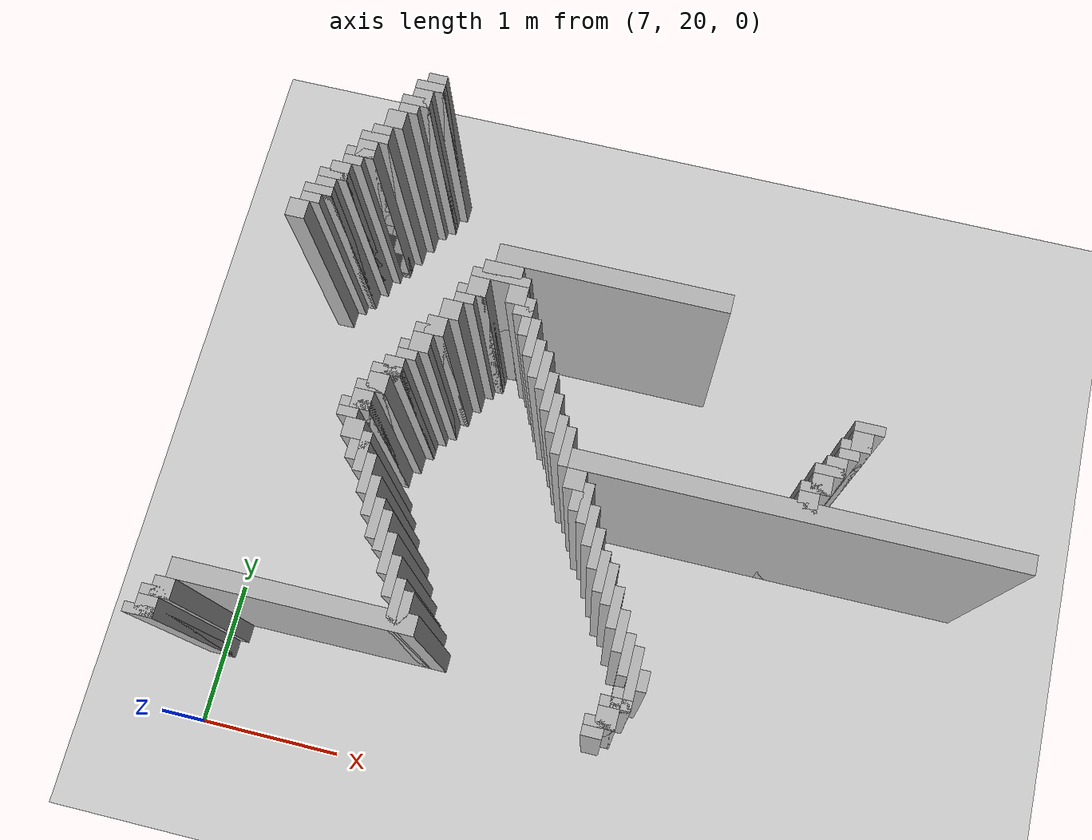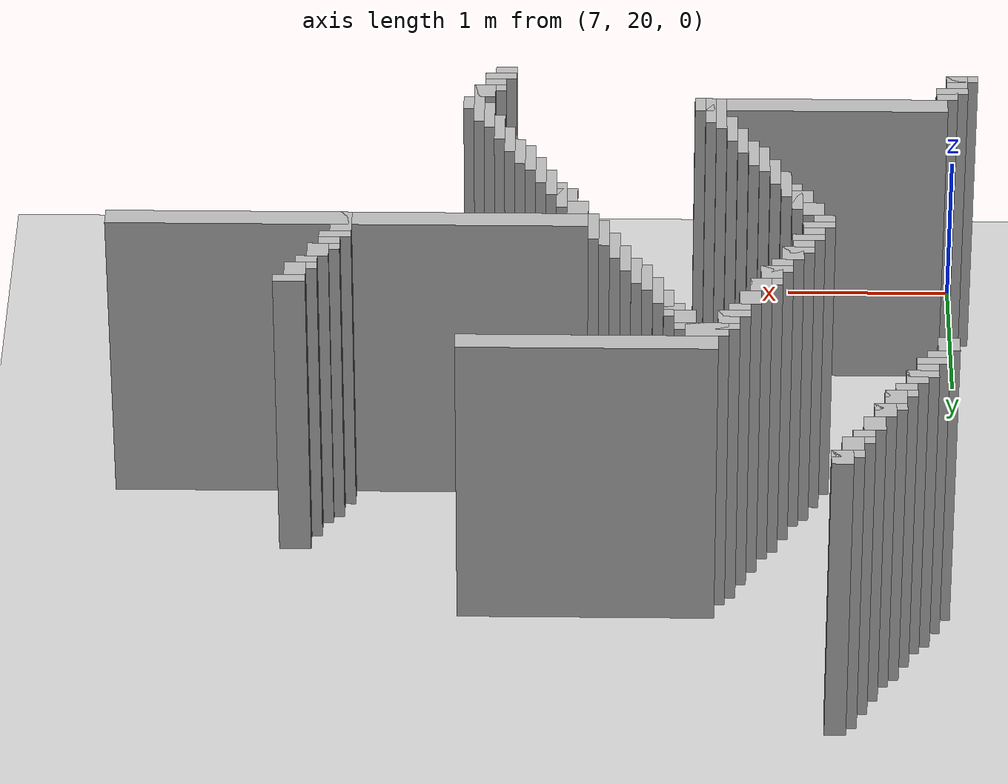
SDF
<sdf version="1.6">
 <world name="slam_world">
  <model name="ground_plane">
   <static>true</static>
   <link name="link">
    <collision name="collision">
     <geometry><plane><normal>0 0 1</normal><size>100 100</size></plane></geometry>
    </collision>
    <visual name="visual">
     <geometry><plane><normal>0 0 1</normal><size>100 100</size></plane></geometry>
     <material>
      <ambient>0.8 0.8 0.8 1</ambient>
      <diffuse>0.8 0.8 0.8 1</diffuse>
      <specular>0.8 0.8 0.8 1</specular>
     </material>
    </visual>
   </link>
  </model>
  <model name="wall_6">
   <static>true</static>
   <pose>7.787234042553191 24.319148936170212 1.0 0 0 0</pose>
   <link name="link">
    <collision name="collision">
     <geometry><box><size>0.1276595744680851 0.1276595744680851 2.0</size></box></geometry>
    </collision>
    <visual name="visual">
     <geometry><box><size>0.1276595744680851 0.1276595744680851 2.0</size></box></geometry>
     <material><ambient>0.5 0.5 0.5 1</ambient><diffuse>0.7 0.7 0.7 1</diffuse></material>
    </visual>
   </link>
  </model>
  <model name="wall_12">
   <static>true</static>
   <pose>7.755319148936169 24.28723404255319 1.0 0 0 0</pose>
   <link name="link">
    <collision name="collision">
     <geometry><box><size>0.19148936170212766 0.06382978723404255 2.0</size></box></geometry>
    </collision>
    <visual name="visual">
     <geometry><box><size>0.19148936170212766 0.06382978723404255 2.0</size></box></geometry>
     <material><ambient>0.5 0.5 0.5 1</ambient><diffuse>0.7 0.7 0.7 1</diffuse></material>
    </visual>
   </link>
  </model>
  <model name="wall_18">
   <static>true</static>
   <pose>7.723404255319148 24.191489361702125 1.0 0 0 0</pose>
   <link name="link">
    <collision name="collision">
     <geometry><box><size>0.1276595744680851 0.1276595744680851 2.0</size></box></geometry>
    </collision>
    <visual name="visual">
     <geometry><box><size>0.1276595744680851 0.1276595744680851 2.0</size></box></geometry>
     <material><ambient>0.5 0.5 0.5 1</ambient><diffuse>0.7 0.7 0.7 1</diffuse></material>
    </visual>
   </link>
  </model>
  <model name="wall_24">
   <static>true</static>
   <pose>7.691489361702127 24.159574468085104 1.0 0 0 0</pose>
   <link name="link">
    <collision name="collision">
     <geometry><box><size>0.19148936170212766 0.06382978723404255 2.0</size></box></geometry>
    </collision>
    <visual name="visual">
     <geometry><box><size>0.19148936170212766 0.06382978723404255 2.0</size></box></geometry>
     <material><ambient>0.5 0.5 0.5 1</ambient><diffuse>0.7 0.7 0.7 1</diffuse></material>
    </visual>
   </link>
  </model>
  <model name="wall_30">
   <static>true</static>
   <pose>7.659574468085106 24.095744680851062 1.0 0 0 0</pose>
   <link name="link">
    <collision name="collision">
     <geometry><box><size>0.1276595744680851 0.06382978723404255 2.0</size></box></geometry>
    </collision>
    <visual name="visual">
     <geometry><box><size>0.1276595744680851 0.06382978723404255 2.0</size></box></geometry>
     <material><ambient>0.5 0.5 0.5 1</ambient><diffuse>0.7 0.7 0.7 1</diffuse></material>
    </visual>
   </link>
  </model>
  <model name="wall_36">
   <static>true</static>
   <pose>7.595744680851063 23.999999999999996 1.0 0 0 0</pose>
   <link name="link">
    <collision name="collision">
     <geometry><box><size>0.1276595744680851 0.1276595744680851 2.0</size></box></geometry>
    </collision>
    <visual name="visual">
     <geometry><box><size>0.1276595744680851 0.1276595744680851 2.0</size></box></geometry>
     <material><ambient>0.5 0.5 0.5 1</ambient><diffuse>0.7 0.7 0.7 1</diffuse></material>
    </visual>
   </link>
  </model>
  <model name="wall_42">
   <static>true</static>
   <pose>7.531914893617021 23.872340425531913 1.0 0 0 0</pose>
   <link name="link">
    <collision name="collision">
     <geometry><box><size>0.1276595744680851 0.1276595744680851 2.0</size></box></geometry>
    </collision>
    <visual name="visual">
     <geometry><box><size>0.1276595744680851 0.1276595744680851 2.0</size></box></geometry>
     <material><ambient>0.5 0.5 0.5 1</ambient><diffuse>0.7 0.7 0.7 1</diffuse></material>
    </visual>
   </link>
  </model>
  <model name="wall_48">
   <static>true</static>
   <pose>7.499999999999999 23.840425531914892 1.0 0 0 0</pose>
   <link name="link">
    <collision name="collision">
     <geometry><box><size>0.19148936170212766 0.06382978723404255 2.0</size></box></geometry>
    </collision>
    <visual name="visual">
     <geometry><box><size>0.19148936170212766 0.06382978723404255 2.0</size></box></geometry>
     <material><ambient>0.5 0.5 0.5 1</ambient><diffuse>0.7 0.7 0.7 1</diffuse></material>
    </visual>
   </link>
  </model>
  <model name="wall_54">
   <static>true</static>
   <pose>7.468085106382978 23.744680851063826 1.0 0 0 0</pose>
   <link name="link">
    <collision name="collision">
     <geometry><box><size>0.1276595744680851 0.1276595744680851 2.0</size></box></geometry>
    </collision>
    <visual name="visual">
     <geometry><box><size>0.1276595744680851 0.1276595744680851 2.0</size></box></geometry>
     <material><ambient>0.5 0.5 0.5 1</ambient><diffuse>0.7 0.7 0.7 1</diffuse></material>
    </visual>
   </link>
  </model>
  <model name="wall_60">
   <static>true</static>
   <pose>7.436170212765957 23.712765957446805 1.0 0 0 0</pose>
   <link name="link">
    <collision name="collision">
     <geometry><box><size>0.19148936170212766 0.06382978723404255 2.0</size></box></geometry>
    </collision>
    <visual name="visual">
     <geometry><box><size>0.19148936170212766 0.06382978723404255 2.0</size></box></geometry>
     <material><ambient>0.5 0.5 0.5 1</ambient><diffuse>0.7 0.7 0.7 1</diffuse></material>
    </visual>
   </link>
  </model>
  <model name="wall_66">
   <static>true</static>
   <pose>7.404255319148936 23.648936170212764 1.0 0 0 0</pose>
   <link name="link">
    <collision name="collision">
     <geometry><box><size>0.1276595744680851 0.06382978723404255 2.0</size></box></geometry>
    </collision>
    <visual name="visual">
     <geometry><box><size>0.1276595744680851 0.06382978723404255 2.0</size></box></geometry>
     <material><ambient>0.5 0.5 0.5 1</ambient><diffuse>0.7 0.7 0.7 1</diffuse></material>
    </visual>
   </link>
  </model>
  <model name="wall_72">
   <static>true</static>
   <pose>7.340425531914893 23.5531914893617 1.0 0 0 0</pose>
   <link name="link">
    <collision name="collision">
     <geometry><box><size>0.1276595744680851 0.1276595744680851 2.0</size></box></geometry>
    </collision>
    <visual name="visual">
     <geometry><box><size>0.1276595744680851 0.1276595744680851 2.0</size></box></geometry>
     <material><ambient>0.5 0.5 0.5 1</ambient><diffuse>0.7 0.7 0.7 1</diffuse></material>
    </visual>
   </link>
  </model>
  <model name="wall_78">
   <static>true</static>
   <pose>7.3085106382978715 23.52127659574468 1.0 0 0 0</pose>
   <link name="link">
    <collision name="collision">
     <geometry><box><size>0.19148936170212766 0.06382978723404255 2.0</size></box></geometry>
    </collision>
    <visual name="visual">
     <geometry><box><size>0.19148936170212766 0.06382978723404255 2.0</size></box></geometry>
     <material><ambient>0.5 0.5 0.5 1</ambient><diffuse>0.7 0.7 0.7 1</diffuse></material>
    </visual>
   </link>
  </model>
  <model name="wall_84">
   <static>true</static>
   <pose>7.276595744680851 23.425531914893615 1.0 0 0 0</pose>
   <link name="link">
    <collision name="collision">
     <geometry><box><size>0.1276595744680851 0.1276595744680851 2.0</size></box></geometry>
    </collision>
    <visual name="visual">
     <geometry><box><size>0.1276595744680851 0.1276595744680851 2.0</size></box></geometry>
     <material><ambient>0.5 0.5 0.5 1</ambient><diffuse>0.7 0.7 0.7 1</diffuse></material>
    </visual>
   </link>
  </model>
  <model name="wall_90">
   <static>true</static>
   <pose>7.244680851063829 23.393617021276594 1.0 0 0 0</pose>
   <link name="link">
    <collision name="collision">
     <geometry><box><size>0.19148936170212766 0.06382978723404255 2.0</size></box></geometry>
    </collision>
    <visual name="visual">
     <geometry><box><size>0.19148936170212766 0.06382978723404255 2.0</size></box></geometry>
     <material><ambient>0.5 0.5 0.5 1</ambient><diffuse>0.7 0.7 0.7 1</diffuse></material>
    </visual>
   </link>
  </model>
  <model name="wall_96">
   <static>true</static>
   <pose>7.212765957446808 23.329787234042552 1.0 0 0 0</pose>
   <link name="link">
    <collision name="collision">
     <geometry><box><size>0.1276595744680851 0.06382978723404255 2.0</size></box></geometry>
    </collision>
    <visual name="visual">
     <geometry><box><size>0.1276595744680851 0.06382978723404255 2.0</size></box></geometry>
     <material><ambient>0.5 0.5 0.5 1</ambient><diffuse>0.7 0.7 0.7 1</diffuse></material>
    </visual>
   </link>
  </model>
  <model name="wall_102">
   <static>true</static>
   <pose>7.148936170212766 23.234042553191486 1.0 0 0 0</pose>
   <link name="link">
    <collision name="collision">
     <geometry><box><size>0.1276595744680851 0.1276595744680851 2.0</size></box></geometry>
    </collision>
    <visual name="visual">
     <geometry><box><size>0.1276595744680851 0.1276595744680851 2.0</size></box></geometry>
     <material><ambient>0.5 0.5 0.5 1</ambient><diffuse>0.7 0.7 0.7 1</diffuse></material>
    </visual>
   </link>
  </model>
  <model name="wall_103">
   <static>true</static>
   <pose>9.25531914893617 23.234042553191486 1.0 0 0 0</pose>
   <link name="link">
    <collision name="collision">
     <geometry><box><size>1.5319148936170213 0.1276595744680851 2.0</size></box></geometry>
    </collision>
    <visual name="visual">
     <geometry><box><size>1.5319148936170213 0.1276595744680851 2.0</size></box></geometry>
     <material><ambient>0.5 0.5 0.5 1</ambient><diffuse>0.7 0.7 0.7 1</diffuse></material>
    </visual>
   </link>
  </model>
  <model name="wall_110">
   <static>true</static>
   <pose>8.553191489361701 23.106382978723403 1.0 0 0 0</pose>
   <link name="link">
    <collision name="collision">
     <geometry><box><size>0.2553191489361702 0.1276595744680851 2.0</size></box></geometry>
    </collision>
    <visual name="visual">
     <geometry><box><size>0.2553191489361702 0.1276595744680851 2.0</size></box></geometry>
     <material><ambient>0.5 0.5 0.5 1</ambient><diffuse>0.7 0.7 0.7 1</diffuse></material>
    </visual>
   </link>
  </model>
  <model name="wall_117">
   <static>true</static>
   <pose>8.553191489361701 23.074468085106382 1.0 0 0 0</pose>
   <link name="link">
    <collision name="collision">
     <geometry><box><size>0.3829787234042553 0.06382978723404255 2.0</size></box></geometry>
    </collision>
    <visual name="visual">
     <geometry><box><size>0.3829787234042553 0.06382978723404255 2.0</size></box></geometry>
     <material><ambient>0.5 0.5 0.5 1</ambient><diffuse>0.7 0.7 0.7 1</diffuse></material>
    </visual>
   </link>
  </model>
  <model name="wall_124">
   <static>true</static>
   <pose>8.425531914893616 22.978723404255316 1.0 0 0 0</pose>
   <link name="link">
    <collision name="collision">
     <geometry><box><size>0.1276595744680851 0.1276595744680851 2.0</size></box></geometry>
    </collision>
    <visual name="visual">
     <geometry><box><size>0.1276595744680851 0.1276595744680851 2.0</size></box></geometry>
     <material><ambient>0.5 0.5 0.5 1</ambient><diffuse>0.7 0.7 0.7 1</diffuse></material>
    </visual>
   </link>
  </model>
  <model name="wall_125">
   <static>true</static>
   <pose>8.680851063829786 22.978723404255316 1.0 0 0 0</pose>
   <link name="link">
    <collision name="collision">
     <geometry><box><size>0.1276595744680851 0.1276595744680851 2.0</size></box></geometry>
    </collision>
    <visual name="visual">
     <geometry><box><size>0.1276595744680851 0.1276595744680851 2.0</size></box></geometry>
     <material><ambient>0.5 0.5 0.5 1</ambient><diffuse>0.7 0.7 0.7 1</diffuse></material>
    </visual>
   </link>
  </model>
  <model name="wall_132">
   <static>true</static>
   <pose>8.393617021276595 22.946808510638295 1.0 0 0 0</pose>
   <link name="link">
    <collision name="collision">
     <geometry><box><size>0.19148936170212766 0.06382978723404255 2.0</size></box></geometry>
    </collision>
    <visual name="visual">
     <geometry><box><size>0.19148936170212766 0.06382978723404255 2.0</size></box></geometry>
     <material><ambient>0.5 0.5 0.5 1</ambient><diffuse>0.7 0.7 0.7 1</diffuse></material>
    </visual>
   </link>
  </model>
  <model name="wall_133">
   <static>true</static>
   <pose>8.77659574468085 22.851063829787233 1.0 0 0 0</pose>
   <link name="link">
    <collision name="collision">
     <geometry><box><size>0.06382978723404255 0.2553191489361702 2.0</size></box></geometry>
    </collision>
    <visual name="visual">
     <geometry><box><size>0.06382978723404255 0.2553191489361702 2.0</size></box></geometry>
     <material><ambient>0.5 0.5 0.5 1</ambient><diffuse>0.7 0.7 0.7 1</diffuse></material>
    </visual>
   </link>
  </model>
  <model name="wall_137">
   <static>true</static>
   <pose>8.361702127659575 22.882978723404253 1.0 0 0 0</pose>
   <link name="link">
    <collision name="collision">
     <geometry><box><size>0.1276595744680851 0.06382978723404255 2.0</size></box></geometry>
    </collision>
    <visual name="visual">
     <geometry><box><size>0.1276595744680851 0.06382978723404255 2.0</size></box></geometry>
     <material><ambient>0.5 0.5 0.5 1</ambient><diffuse>0.7 0.7 0.7 1</diffuse></material>
    </visual>
   </link>
  </model>
  <model name="wall_138">
   <static>true</static>
   <pose>8.74468085106383 22.882978723404253 1.0 0 0 0</pose>
   <link name="link">
    <collision name="collision">
     <geometry><box><size>0.1276595744680851 0.06382978723404255 2.0</size></box></geometry>
    </collision>
    <visual name="visual">
     <geometry><box><size>0.1276595744680851 0.06382978723404255 2.0</size></box></geometry>
     <material><ambient>0.5 0.5 0.5 1</ambient><diffuse>0.7 0.7 0.7 1</diffuse></material>
    </visual>
   </link>
  </model>
  <model name="wall_143">
   <static>true</static>
   <pose>8.297872340425531 22.78723404255319 1.0 0 0 0</pose>
   <link name="link">
    <collision name="collision">
     <geometry><box><size>0.1276595744680851 0.1276595744680851 2.0</size></box></geometry>
    </collision>
    <visual name="visual">
     <geometry><box><size>0.1276595744680851 0.1276595744680851 2.0</size></box></geometry>
     <material><ambient>0.5 0.5 0.5 1</ambient><diffuse>0.7 0.7 0.7 1</diffuse></material>
    </visual>
   </link>
  </model>
  <model name="wall_144">
   <static>true</static>
   <pose>8.840425531914892 22.723404255319146 1.0 0 0 0</pose>
   <link name="link">
    <collision name="collision">
     <geometry><box><size>0.06382978723404255 0.2553191489361702 2.0</size></box></geometry>
    </collision>
    <visual name="visual">
     <geometry><box><size>0.06382978723404255 0.2553191489361702 2.0</size></box></geometry>
     <material><ambient>0.5 0.5 0.5 1</ambient><diffuse>0.7 0.7 0.7 1</diffuse></material>
    </visual>
   </link>
  </model>
  <model name="wall_151">
   <static>true</static>
   <pose>8.23404255319149 22.659574468085104 1.0 0 0 0</pose>
   <link name="link">
    <collision name="collision">
     <geometry><box><size>0.1276595744680851 0.1276595744680851 2.0</size></box></geometry>
    </collision>
    <visual name="visual">
     <geometry><box><size>0.1276595744680851 0.1276595744680851 2.0</size></box></geometry>
     <material><ambient>0.5 0.5 0.5 1</ambient><diffuse>0.7 0.7 0.7 1</diffuse></material>
    </visual>
   </link>
  </model>
  <model name="wall_152">
   <static>true</static>
   <pose>8.904255319148936 22.595744680851062 1.0 0 0 0</pose>
   <link name="link">
    <collision name="collision">
     <geometry><box><size>0.06382978723404255 0.2553191489361702 2.0</size></box></geometry>
    </collision>
    <visual name="visual">
     <geometry><box><size>0.06382978723404255 0.2553191489361702 2.0</size></box></geometry>
     <material><ambient>0.5 0.5 0.5 1</ambient><diffuse>0.7 0.7 0.7 1</diffuse></material>
    </visual>
   </link>
  </model>
  <model name="wall_159">
   <static>true</static>
   <pose>8.202127659574467 22.627659574468083 1.0 0 0 0</pose>
   <link name="link">
    <collision name="collision">
     <geometry><box><size>0.19148936170212766 0.06382978723404255 2.0</size></box></geometry>
    </collision>
    <visual name="visual">
     <geometry><box><size>0.19148936170212766 0.06382978723404255 2.0</size></box></geometry>
     <material><ambient>0.5 0.5 0.5 1</ambient><diffuse>0.7 0.7 0.7 1</diffuse></material>
    </visual>
   </link>
  </model>
  <model name="wall_160">
   <static>true</static>
   <pose>8.968085106382977 22.53191489361702 1.0 0 0 0</pose>
   <link name="link">
    <collision name="collision">
     <geometry><box><size>0.06382978723404255 0.2553191489361702 2.0</size></box></geometry>
    </collision>
    <visual name="visual">
     <geometry><box><size>0.06382978723404255 0.2553191489361702 2.0</size></box></geometry>
     <material><ambient>0.5 0.5 0.5 1</ambient><diffuse>0.7 0.7 0.7 1</diffuse></material>
    </visual>
   </link>
  </model>
  <model name="wall_161">
   <static>true</static>
   <pose>11.01063829787234 22.627659574468083 1.0 0 0 0</pose>
   <link name="link">
    <collision name="collision">
     <geometry><box><size>0.19148936170212766 0.06382978723404255 2.0</size></box></geometry>
    </collision>
    <visual name="visual">
     <geometry><box><size>0.19148936170212766 0.06382978723404255 2.0</size></box></geometry>
     <material><ambient>0.5 0.5 0.5 1</ambient><diffuse>0.7 0.7 0.7 1</diffuse></material>
    </visual>
   </link>
  </model>
  <model name="wall_164">
   <static>true</static>
   <pose>8.170212765957446 22.53191489361702 1.0 0 0 0</pose>
   <link name="link">
    <collision name="collision">
     <geometry><box><size>0.1276595744680851 0.1276595744680851 2.0</size></box></geometry>
    </collision>
    <visual name="visual">
     <geometry><box><size>0.1276595744680851 0.1276595744680851 2.0</size></box></geometry>
     <material><ambient>0.5 0.5 0.5 1</ambient><diffuse>0.7 0.7 0.7 1</diffuse></material>
    </visual>
   </link>
  </model>
  <model name="wall_165">
   <static>true</static>
   <pose>10.978723404255318 22.53191489361702 1.0 0 0 0</pose>
   <link name="link">
    <collision name="collision">
     <geometry><box><size>0.1276595744680851 0.1276595744680851 2.0</size></box></geometry>
    </collision>
    <visual name="visual">
     <geometry><box><size>0.1276595744680851 0.1276595744680851 2.0</size></box></geometry>
     <material><ambient>0.5 0.5 0.5 1</ambient><diffuse>0.7 0.7 0.7 1</diffuse></material>
    </visual>
   </link>
  </model>
  <model name="wall_169">
   <static>true</static>
   <pose>8.138297872340425 22.5 1.0 0 0 0</pose>
   <link name="link">
    <collision name="collision">
     <geometry><box><size>0.19148936170212766 0.06382978723404255 2.0</size></box></geometry>
    </collision>
    <visual name="visual">
     <geometry><box><size>0.19148936170212766 0.06382978723404255 2.0</size></box></geometry>
     <material><ambient>0.5 0.5 0.5 1</ambient><diffuse>0.7 0.7 0.7 1</diffuse></material>
    </visual>
   </link>
  </model>
  <model name="wall_170">
   <static>true</static>
   <pose>9.03191489361702 22.404255319148934 1.0 0 0 0</pose>
   <link name="link">
    <collision name="collision">
     <geometry><box><size>0.06382978723404255 0.2553191489361702 2.0</size></box></geometry>
    </collision>
    <visual name="visual">
     <geometry><box><size>0.06382978723404255 0.2553191489361702 2.0</size></box></geometry>
     <material><ambient>0.5 0.5 0.5 1</ambient><diffuse>0.7 0.7 0.7 1</diffuse></material>
    </visual>
   </link>
  </model>
  <model name="wall_171">
   <static>true</static>
   <pose>10.946808510638297 22.5 1.0 0 0 0</pose>
   <link name="link">
    <collision name="collision">
     <geometry><box><size>0.19148936170212766 0.06382978723404255 2.0</size></box></geometry>
    </collision>
    <visual name="visual">
     <geometry><box><size>0.19148936170212766 0.06382978723404255 2.0</size></box></geometry>
     <material><ambient>0.5 0.5 0.5 1</ambient><diffuse>0.7 0.7 0.7 1</diffuse></material>
    </visual>
   </link>
  </model>
  <model name="wall_174">
   <static>true</static>
   <pose>8.106382978723403 22.436170212765955 1.0 0 0 0</pose>
   <link name="link">
    <collision name="collision">
     <geometry><box><size>0.1276595744680851 0.06382978723404255 2.0</size></box></geometry>
    </collision>
    <visual name="visual">
     <geometry><box><size>0.1276595744680851 0.06382978723404255 2.0</size></box></geometry>
     <material><ambient>0.5 0.5 0.5 1</ambient><diffuse>0.7 0.7 0.7 1</diffuse></material>
    </visual>
   </link>
  </model>
  <model name="wall_175">
   <static>true</static>
   <pose>10.914893617021276 22.436170212765955 1.0 0 0 0</pose>
   <link name="link">
    <collision name="collision">
     <geometry><box><size>0.1276595744680851 0.06382978723404255 2.0</size></box></geometry>
    </collision>
    <visual name="visual">
     <geometry><box><size>0.1276595744680851 0.06382978723404255 2.0</size></box></geometry>
     <material><ambient>0.5 0.5 0.5 1</ambient><diffuse>0.7 0.7 0.7 1</diffuse></material>
    </visual>
   </link>
  </model>
  <model name="wall_179">
   <static>true</static>
   <pose>8.042553191489361 22.340425531914892 1.0 0 0 0</pose>
   <link name="link">
    <collision name="collision">
     <geometry><box><size>0.1276595744680851 0.1276595744680851 2.0</size></box></geometry>
    </collision>
    <visual name="visual">
     <geometry><box><size>0.1276595744680851 0.1276595744680851 2.0</size></box></geometry>
     <material><ambient>0.5 0.5 0.5 1</ambient><diffuse>0.7 0.7 0.7 1</diffuse></material>
    </visual>
   </link>
  </model>
  <model name="wall_180">
   <static>true</static>
   <pose>9.095744680851062 22.27659574468085 1.0 0 0 0</pose>
   <link name="link">
    <collision name="collision">
     <geometry><box><size>0.06382978723404255 0.2553191489361702 2.0</size></box></geometry>
    </collision>
    <visual name="visual">
     <geometry><box><size>0.06382978723404255 0.2553191489361702 2.0</size></box></geometry>
     <material><ambient>0.5 0.5 0.5 1</ambient><diffuse>0.7 0.7 0.7 1</diffuse></material>
    </visual>
   </link>
  </model>
  <model name="wall_181">
   <static>true</static>
   <pose>10.851063829787233 22.340425531914892 1.0 0 0 0</pose>
   <link name="link">
    <collision name="collision">
     <geometry><box><size>0.1276595744680851 0.1276595744680851 2.0</size></box></geometry>
    </collision>
    <visual name="visual">
     <geometry><box><size>0.1276595744680851 0.1276595744680851 2.0</size></box></geometry>
     <material><ambient>0.5 0.5 0.5 1</ambient><diffuse>0.7 0.7 0.7 1</diffuse></material>
    </visual>
   </link>
  </model>
  <model name="wall_184">
   <static>true</static>
   <pose>8.01063829787234 22.30851063829787 1.0 0 0 0</pose>
   <link name="link">
    <collision name="collision">
     <geometry><box><size>0.19148936170212766 0.06382978723404255 2.0</size></box></geometry>
    </collision>
    <visual name="visual">
     <geometry><box><size>0.19148936170212766 0.06382978723404255 2.0</size></box></geometry>
     <material><ambient>0.5 0.5 0.5 1</ambient><diffuse>0.7 0.7 0.7 1</diffuse></material>
    </visual>
   </link>
  </model>
  <model name="wall_185">
   <static>true</static>
   <pose>10.819148936170212 22.30851063829787 1.0 0 0 0</pose>
   <link name="link">
    <collision name="collision">
     <geometry><box><size>0.19148936170212766 0.06382978723404255 2.0</size></box></geometry>
    </collision>
    <visual name="visual">
     <geometry><box><size>0.19148936170212766 0.06382978723404255 2.0</size></box></geometry>
     <material><ambient>0.5 0.5 0.5 1</ambient><diffuse>0.7 0.7 0.7 1</diffuse></material>
    </visual>
   </link>
  </model>
  <model name="wall_189">
   <static>true</static>
   <pose>7.978723404255319 22.212765957446805 1.0 0 0 0</pose>
   <link name="link">
    <collision name="collision">
     <geometry><box><size>0.1276595744680851 0.1276595744680851 2.0</size></box></geometry>
    </collision>
    <visual name="visual">
     <geometry><box><size>0.1276595744680851 0.1276595744680851 2.0</size></box></geometry>
     <material><ambient>0.5 0.5 0.5 1</ambient><diffuse>0.7 0.7 0.7 1</diffuse></material>
    </visual>
   </link>
  </model>
  <model name="wall_190">
   <static>true</static>
   <pose>9.159574468085106 22.148936170212764 1.0 0 0 0</pose>
   <link name="link">
    <collision name="collision">
     <geometry><box><size>0.06382978723404255 0.2553191489361702 2.0</size></box></geometry>
    </collision>
    <visual name="visual">
     <geometry><box><size>0.06382978723404255 0.2553191489361702 2.0</size></box></geometry>
     <material><ambient>0.5 0.5 0.5 1</ambient><diffuse>0.7 0.7 0.7 1</diffuse></material>
    </visual>
   </link>
  </model>
  <model name="wall_191">
   <static>true</static>
   <pose>10.787234042553191 22.212765957446805 1.0 0 0 0</pose>
   <link name="link">
    <collision name="collision">
     <geometry><box><size>0.1276595744680851 0.1276595744680851 2.0</size></box></geometry>
    </collision>
    <visual name="visual">
     <geometry><box><size>0.1276595744680851 0.1276595744680851 2.0</size></box></geometry>
     <material><ambient>0.5 0.5 0.5 1</ambient><diffuse>0.7 0.7 0.7 1</diffuse></material>
    </visual>
   </link>
  </model>
  <model name="wall_197">
   <static>true</static>
   <pose>7.946808510638297 22.180851063829785 1.0 0 0 0</pose>
   <link name="link">
    <collision name="collision">
     <geometry><box><size>0.19148936170212766 0.06382978723404255 2.0</size></box></geometry>
    </collision>
    <visual name="visual">
     <geometry><box><size>0.19148936170212766 0.06382978723404255 2.0</size></box></geometry>
     <material><ambient>0.5 0.5 0.5 1</ambient><diffuse>0.7 0.7 0.7 1</diffuse></material>
    </visual>
   </link>
  </model>
  <model name="wall_198">
   <static>true</static>
   <pose>9.223404255319148 22.085106382978722 1.0 0 0 0</pose>
   <link name="link">
    <collision name="collision">
     <geometry><box><size>0.06382978723404255 0.2553191489361702 2.0</size></box></geometry>
    </collision>
    <visual name="visual">
     <geometry><box><size>0.06382978723404255 0.2553191489361702 2.0</size></box></geometry>
     <material><ambient>0.5 0.5 0.5 1</ambient><diffuse>0.7 0.7 0.7 1</diffuse></material>
    </visual>
   </link>
  </model>
  <model name="wall_199">
   <static>true</static>
   <pose>10.75531914893617 22.180851063829785 1.0 0 0 0</pose>
   <link name="link">
    <collision name="collision">
     <geometry><box><size>0.19148936170212766 0.06382978723404255 2.0</size></box></geometry>
    </collision>
    <visual name="visual">
     <geometry><box><size>0.19148936170212766 0.06382978723404255 2.0</size></box></geometry>
     <material><ambient>0.5 0.5 0.5 1</ambient><diffuse>0.7 0.7 0.7 1</diffuse></material>
    </visual>
   </link>
  </model>
  <model name="wall_202">
   <static>true</static>
   <pose>7.914893617021276 22.085106382978722 1.0 0 0 0</pose>
   <link name="link">
    <collision name="collision">
     <geometry><box><size>0.1276595744680851 0.1276595744680851 2.0</size></box></geometry>
    </collision>
    <visual name="visual">
     <geometry><box><size>0.1276595744680851 0.1276595744680851 2.0</size></box></geometry>
     <material><ambient>0.5 0.5 0.5 1</ambient><diffuse>0.7 0.7 0.7 1</diffuse></material>
    </visual>
   </link>
  </model>
  <model name="wall_203">
   <static>true</static>
   <pose>10.723404255319148 22.0531914893617 1.0 0 0 0</pose>
   <link name="link">
    <collision name="collision">
     <geometry><box><size>0.1276595744680851 0.19148936170212766 2.0</size></box></geometry>
    </collision>
    <visual name="visual">
     <geometry><box><size>0.1276595744680851 0.19148936170212766 2.0</size></box></geometry>
     <material><ambient>0.5 0.5 0.5 1</ambient><diffuse>0.7 0.7 0.7 1</diffuse></material>
    </visual>
   </link>
  </model>
  <model name="wall_208">
   <static>true</static>
   <pose>7.882978723404254 22.0531914893617 1.0 0 0 0</pose>
   <link name="link">
    <collision name="collision">
     <geometry><box><size>0.19148936170212766 0.06382978723404255 2.0</size></box></geometry>
    </collision>
    <visual name="visual">
     <geometry><box><size>0.19148936170212766 0.06382978723404255 2.0</size></box></geometry>
     <material><ambient>0.5 0.5 0.5 1</ambient><diffuse>0.7 0.7 0.7 1</diffuse></material>
    </visual>
   </link>
  </model>
  <model name="wall_209">
   <static>true</static>
   <pose>10.691489361702127 22.02127659574468 1.0 0 0 0</pose>
   <link name="link">
    <collision name="collision">
     <geometry><box><size>2.8723404255319145 0.1276595744680851 2.0</size></box></geometry>
    </collision>
    <visual name="visual">
     <geometry><box><size>2.8723404255319145 0.1276595744680851 2.0</size></box></geometry>
     <material><ambient>0.5 0.5 0.5 1</ambient><diffuse>0.7 0.7 0.7 1</diffuse></material>
    </visual>
   </link>
  </model>
  <model name="wall_211">
   <static>true</static>
   <pose>7.8510638297872335 21.989361702127656 1.0 0 0 0</pose>
   <link name="link">
    <collision name="collision">
     <geometry><box><size>0.1276595744680851 0.06382978723404255 2.0</size></box></geometry>
    </collision>
    <visual name="visual">
     <geometry><box><size>0.1276595744680851 0.06382978723404255 2.0</size></box></geometry>
     <material><ambient>0.5 0.5 0.5 1</ambient><diffuse>0.7 0.7 0.7 1</diffuse></material>
    </visual>
   </link>
  </model>
  <model name="wall_215">
   <static>true</static>
   <pose>7.914893617021276 21.893617021276594 1.0 0 0 0</pose>
   <link name="link">
    <collision name="collision">
     <geometry><box><size>0.1276595744680851 0.1276595744680851 2.0</size></box></geometry>
    </collision>
    <visual name="visual">
     <geometry><box><size>0.1276595744680851 0.1276595744680851 2.0</size></box></geometry>
     <material><ambient>0.5 0.5 0.5 1</ambient><diffuse>0.7 0.7 0.7 1</diffuse></material>
    </visual>
   </link>
  </model>
  <model name="wall_216">
   <static>true</static>
   <pose>9.319148936170212 21.893617021276594 1.0 0 0 0</pose>
   <link name="link">
    <collision name="collision">
     <geometry><box><size>0.1276595744680851 0.1276595744680851 2.0</size></box></geometry>
    </collision>
    <visual name="visual">
     <geometry><box><size>0.1276595744680851 0.1276595744680851 2.0</size></box></geometry>
     <material><ambient>0.5 0.5 0.5 1</ambient><diffuse>0.7 0.7 0.7 1</diffuse></material>
    </visual>
   </link>
  </model>
  <model name="wall_221">
   <static>true</static>
   <pose>8.01063829787234 21.76595744680851 1.0 0 0 0</pose>
   <link name="link">
    <collision name="collision">
     <geometry><box><size>0.06382978723404255 0.2553191489361702 2.0</size></box></geometry>
    </collision>
    <visual name="visual">
     <geometry><box><size>0.06382978723404255 0.2553191489361702 2.0</size></box></geometry>
     <material><ambient>0.5 0.5 0.5 1</ambient><diffuse>0.7 0.7 0.7 1</diffuse></material>
    </visual>
   </link>
  </model>
  <model name="wall_222">
   <static>true</static>
   <pose>9.414893617021276 21.76595744680851 1.0 0 0 0</pose>
   <link name="link">
    <collision name="collision">
     <geometry><box><size>0.06382978723404255 0.2553191489361702 2.0</size></box></geometry>
    </collision>
    <visual name="visual">
     <geometry><box><size>0.06382978723404255 0.2553191489361702 2.0</size></box></geometry>
     <material><ambient>0.5 0.5 0.5 1</ambient><diffuse>0.7 0.7 0.7 1</diffuse></material>
    </visual>
   </link>
  </model>
  <model name="wall_228">
   <static>true</static>
   <pose>7.978723404255319 21.76595744680851 1.0 0 0 0</pose>
   <link name="link">
    <collision name="collision">
     <geometry><box><size>0.1276595744680851 0.1276595744680851 2.0</size></box></geometry>
    </collision>
    <visual name="visual">
     <geometry><box><size>0.1276595744680851 0.1276595744680851 2.0</size></box></geometry>
     <material><ambient>0.5 0.5 0.5 1</ambient><diffuse>0.7 0.7 0.7 1</diffuse></material>
    </visual>
   </link>
  </model>
  <model name="wall_229">
   <static>true</static>
   <pose>9.382978723404255 21.76595744680851 1.0 0 0 0</pose>
   <link name="link">
    <collision name="collision">
     <geometry><box><size>0.1276595744680851 0.1276595744680851 2.0</size></box></geometry>
    </collision>
    <visual name="visual">
     <geometry><box><size>0.1276595744680851 0.1276595744680851 2.0</size></box></geometry>
     <material><ambient>0.5 0.5 0.5 1</ambient><diffuse>0.7 0.7 0.7 1</diffuse></material>
    </visual>
   </link>
  </model>
  <model name="wall_236">
   <static>true</static>
   <pose>8.074468085106382 21.638297872340424 1.0 0 0 0</pose>
   <link name="link">
    <collision name="collision">
     <geometry><box><size>0.06382978723404255 0.2553191489361702 2.0</size></box></geometry>
    </collision>
    <visual name="visual">
     <geometry><box><size>0.06382978723404255 0.2553191489361702 2.0</size></box></geometry>
     <material><ambient>0.5 0.5 0.5 1</ambient><diffuse>0.7 0.7 0.7 1</diffuse></material>
    </visual>
   </link>
  </model>
  <model name="wall_237">
   <static>true</static>
   <pose>9.478723404255318 21.638297872340424 1.0 0 0 0</pose>
   <link name="link">
    <collision name="collision">
     <geometry><box><size>0.06382978723404255 0.2553191489361702 2.0</size></box></geometry>
    </collision>
    <visual name="visual">
     <geometry><box><size>0.06382978723404255 0.2553191489361702 2.0</size></box></geometry>
     <material><ambient>0.5 0.5 0.5 1</ambient><diffuse>0.7 0.7 0.7 1</diffuse></material>
    </visual>
   </link>
  </model>
  <model name="wall_249">
   <static>true</static>
   <pose>8.138297872340425 21.51063829787234 1.0 0 0 0</pose>
   <link name="link">
    <collision name="collision">
     <geometry><box><size>0.06382978723404255 0.2553191489361702 2.0</size></box></geometry>
    </collision>
    <visual name="visual">
     <geometry><box><size>0.06382978723404255 0.2553191489361702 2.0</size></box></geometry>
     <material><ambient>0.5 0.5 0.5 1</ambient><diffuse>0.7 0.7 0.7 1</diffuse></material>
    </visual>
   </link>
  </model>
  <model name="wall_250">
   <static>true</static>
   <pose>9.542553191489361 21.51063829787234 1.0 0 0 0</pose>
   <link name="link">
    <collision name="collision">
     <geometry><box><size>0.06382978723404255 0.2553191489361702 2.0</size></box></geometry>
    </collision>
    <visual name="visual">
     <geometry><box><size>0.06382978723404255 0.2553191489361702 2.0</size></box></geometry>
     <material><ambient>0.5 0.5 0.5 1</ambient><diffuse>0.7 0.7 0.7 1</diffuse></material>
    </visual>
   </link>
  </model>
  <model name="wall_257">
   <static>true</static>
   <pose>8.202127659574467 21.382978723404253 1.0 0 0 0</pose>
   <link name="link">
    <collision name="collision">
     <geometry><box><size>0.06382978723404255 0.2553191489361702 2.0</size></box></geometry>
    </collision>
    <visual name="visual">
     <geometry><box><size>0.06382978723404255 0.2553191489361702 2.0</size></box></geometry>
     <material><ambient>0.5 0.5 0.5 1</ambient><diffuse>0.7 0.7 0.7 1</diffuse></material>
    </visual>
   </link>
  </model>
  <model name="wall_258">
   <static>true</static>
   <pose>9.606382978723403 21.382978723404253 1.0 0 0 0</pose>
   <link name="link">
    <collision name="collision">
     <geometry><box><size>0.06382978723404255 0.2553191489361702 2.0</size></box></geometry>
    </collision>
    <visual name="visual">
     <geometry><box><size>0.06382978723404255 0.2553191489361702 2.0</size></box></geometry>
     <material><ambient>0.5 0.5 0.5 1</ambient><diffuse>0.7 0.7 0.7 1</diffuse></material>
    </visual>
   </link>
  </model>
  <model name="wall_265">
   <static>true</static>
   <pose>8.26595744680851 21.319148936170212 1.0 0 0 0</pose>
   <link name="link">
    <collision name="collision">
     <geometry><box><size>0.06382978723404255 0.2553191489361702 2.0</size></box></geometry>
    </collision>
    <visual name="visual">
     <geometry><box><size>0.06382978723404255 0.2553191489361702 2.0</size></box></geometry>
     <material><ambient>0.5 0.5 0.5 1</ambient><diffuse>0.7 0.7 0.7 1</diffuse></material>
    </visual>
   </link>
  </model>
  <model name="wall_266">
   <static>true</static>
   <pose>9.670212765957446 21.319148936170212 1.0 0 0 0</pose>
   <link name="link">
    <collision name="collision">
     <geometry><box><size>0.06382978723404255 0.2553191489361702 2.0</size></box></geometry>
    </collision>
    <visual name="visual">
     <geometry><box><size>0.06382978723404255 0.2553191489361702 2.0</size></box></geometry>
     <material><ambient>0.5 0.5 0.5 1</ambient><diffuse>0.7 0.7 0.7 1</diffuse></material>
    </visual>
   </link>
  </model>
  <model name="wall_277">
   <static>true</static>
   <pose>8.329787234042552 21.191489361702125 1.0 0 0 0</pose>
   <link name="link">
    <collision name="collision">
     <geometry><box><size>0.06382978723404255 0.2553191489361702 2.0</size></box></geometry>
    </collision>
    <visual name="visual">
     <geometry><box><size>0.06382978723404255 0.2553191489361702 2.0</size></box></geometry>
     <material><ambient>0.5 0.5 0.5 1</ambient><diffuse>0.7 0.7 0.7 1</diffuse></material>
    </visual>
   </link>
  </model>
  <model name="wall_278">
   <static>true</static>
   <pose>9.734042553191488 21.191489361702125 1.0 0 0 0</pose>
   <link name="link">
    <collision name="collision">
     <geometry><box><size>0.06382978723404255 0.2553191489361702 2.0</size></box></geometry>
    </collision>
    <visual name="visual">
     <geometry><box><size>0.06382978723404255 0.2553191489361702 2.0</size></box></geometry>
     <material><ambient>0.5 0.5 0.5 1</ambient><diffuse>0.7 0.7 0.7 1</diffuse></material>
    </visual>
   </link>
  </model>
  <model name="wall_289">
   <static>true</static>
   <pose>8.393617021276595 21.06382978723404 1.0 0 0 0</pose>
   <link name="link">
    <collision name="collision">
     <geometry><box><size>0.06382978723404255 0.2553191489361702 2.0</size></box></geometry>
    </collision>
    <visual name="visual">
     <geometry><box><size>0.06382978723404255 0.2553191489361702 2.0</size></box></geometry>
     <material><ambient>0.5 0.5 0.5 1</ambient><diffuse>0.7 0.7 0.7 1</diffuse></material>
    </visual>
   </link>
  </model>
  <model name="wall_290">
   <static>true</static>
   <pose>9.797872340425531 21.06382978723404 1.0 0 0 0</pose>
   <link name="link">
    <collision name="collision">
     <geometry><box><size>0.06382978723404255 0.2553191489361702 2.0</size></box></geometry>
    </collision>
    <visual name="visual">
     <geometry><box><size>0.06382978723404255 0.2553191489361702 2.0</size></box></geometry>
     <material><ambient>0.5 0.5 0.5 1</ambient><diffuse>0.7 0.7 0.7 1</diffuse></material>
    </visual>
   </link>
  </model>
  <model name="wall_297">
   <static>true</static>
   <pose>8.457446808510637 20.904255319148934 1.0 0 0 0</pose>
   <link name="link">
    <collision name="collision">
     <geometry><box><size>0.06382978723404255 0.3191489361702127 2.0</size></box></geometry>
    </collision>
    <visual name="visual">
     <geometry><box><size>0.06382978723404255 0.3191489361702127 2.0</size></box></geometry>
     <material><ambient>0.5 0.5 0.5 1</ambient><diffuse>0.7 0.7 0.7 1</diffuse></material>
    </visual>
   </link>
  </model>
  <model name="wall_298">
   <static>true</static>
   <pose>9.861702127659573 20.936170212765955 1.0 0 0 0</pose>
   <link name="link">
    <collision name="collision">
     <geometry><box><size>0.06382978723404255 0.2553191489361702 2.0</size></box></geometry>
    </collision>
    <visual name="visual">
     <geometry><box><size>0.06382978723404255 0.2553191489361702 2.0</size></box></geometry>
     <material><ambient>0.5 0.5 0.5 1</ambient><diffuse>0.7 0.7 0.7 1</diffuse></material>
    </visual>
   </link>
  </model>
  <model name="wall_305">
   <static>true</static>
   <pose>8.52127659574468 20.872340425531913 1.0 0 0 0</pose>
   <link name="link">
    <collision name="collision">
     <geometry><box><size>0.06382978723404255 0.2553191489361702 2.0</size></box></geometry>
    </collision>
    <visual name="visual">
     <geometry><box><size>0.06382978723404255 0.2553191489361702 2.0</size></box></geometry>
     <material><ambient>0.5 0.5 0.5 1</ambient><diffuse>0.7 0.7 0.7 1</diffuse></material>
    </visual>
   </link>
  </model>
  <model name="wall_306">
   <static>true</static>
   <pose>9.925531914893616 20.80851063829787 1.0 0 0 0</pose>
   <link name="link">
    <collision name="collision">
     <geometry><box><size>0.06382978723404255 0.3829787234042553 2.0</size></box></geometry>
    </collision>
    <visual name="visual">
     <geometry><box><size>0.06382978723404255 0.3829787234042553 2.0</size></box></geometry>
     <material><ambient>0.5 0.5 0.5 1</ambient><diffuse>0.7 0.7 0.7 1</diffuse></material>
    </visual>
   </link>
  </model>
  <model name="wall_317">
   <static>true</static>
   <pose>7.8510638297872335 20.80851063829787 1.0 0 0 0</pose>
   <link name="link">
    <collision name="collision">
     <geometry><box><size>1.5319148936170213 0.1276595744680851 2.0</size></box></geometry>
    </collision>
    <visual name="visual">
     <geometry><box><size>1.5319148936170213 0.1276595744680851 2.0</size></box></geometry>
     <material><ambient>0.5 0.5 0.5 1</ambient><diffuse>0.7 0.7 0.7 1</diffuse></material>
    </visual>
   </link>
  </model>
  <model name="wall_318">
   <static>true</static>
   <pose>9.989361702127658 20.80851063829787 1.0 0 0 0</pose>
   <link name="link">
    <collision name="collision">
     <geometry><box><size>0.06382978723404255 0.1276595744680851 2.0</size></box></geometry>
    </collision>
    <visual name="visual">
     <geometry><box><size>0.06382978723404255 0.1276595744680851 2.0</size></box></geometry>
     <material><ambient>0.5 0.5 0.5 1</ambient><diffuse>0.7 0.7 0.7 1</diffuse></material>
    </visual>
   </link>
  </model>
  <model name="wall_329">
   <static>true</static>
   <pose>7.085106382978723 20.680851063829785 1.0 0 0 0</pose>
   <link name="link">
    <collision name="collision">
     <geometry><box><size>0.1276595744680851 0.1276595744680851 2.0</size></box></geometry>
    </collision>
    <visual name="visual">
     <geometry><box><size>0.1276595744680851 0.1276595744680851 2.0</size></box></geometry>
     <material><ambient>0.5 0.5 0.5 1</ambient><diffuse>0.7 0.7 0.7 1</diffuse></material>
    </visual>
   </link>
  </model>
  <model name="wall_330">
   <static>true</static>
   <pose>9.893617021276595 20.680851063829785 1.0 0 0 0</pose>
   <link name="link">
    <collision name="collision">
     <geometry><box><size>0.1276595744680851 0.1276595744680851 2.0</size></box></geometry>
    </collision>
    <visual name="visual">
     <geometry><box><size>0.1276595744680851 0.1276595744680851 2.0</size></box></geometry>
     <material><ambient>0.5 0.5 0.5 1</ambient><diffuse>0.7 0.7 0.7 1</diffuse></material>
    </visual>
   </link>
  </model>
  <model name="wall_337">
   <static>true</static>
   <pose>7.053191489361701 20.648936170212764 1.0 0 0 0</pose>
   <link name="link">
    <collision name="collision">
     <geometry><box><size>0.19148936170212766 0.06382978723404255 2.0</size></box></geometry>
    </collision>
    <visual name="visual">
     <geometry><box><size>0.19148936170212766 0.06382978723404255 2.0</size></box></geometry>
     <material><ambient>0.5 0.5 0.5 1</ambient><diffuse>0.7 0.7 0.7 1</diffuse></material>
    </visual>
   </link>
  </model>
  <model name="wall_338">
   <static>true</static>
   <pose>9.861702127659573 20.648936170212764 1.0 0 0 0</pose>
   <link name="link">
    <collision name="collision">
     <geometry><box><size>0.19148936170212766 0.06382978723404255 2.0</size></box></geometry>
    </collision>
    <visual name="visual">
     <geometry><box><size>0.19148936170212766 0.06382978723404255 2.0</size></box></geometry>
     <material><ambient>0.5 0.5 0.5 1</ambient><diffuse>0.7 0.7 0.7 1</diffuse></material>
    </visual>
   </link>
  </model>
  <model name="wall_344">
   <static>true</static>
   <pose>7.0212765957446805 20.5531914893617 1.0 0 0 0</pose>
   <link name="link">
    <collision name="collision">
     <geometry><box><size>0.1276595744680851 0.1276595744680851 2.0</size></box></geometry>
    </collision>
    <visual name="visual">
     <geometry><box><size>0.1276595744680851 0.1276595744680851 2.0</size></box></geometry>
     <material><ambient>0.5 0.5 0.5 1</ambient><diffuse>0.7 0.7 0.7 1</diffuse></material>
    </visual>
   </link>
  </model>
  <model name="wall_345">
   <static>true</static>
   <pose>9.829787234042552 20.5531914893617 1.0 0 0 0</pose>
   <link name="link">
    <collision name="collision">
     <geometry><box><size>0.1276595744680851 0.1276595744680851 2.0</size></box></geometry>
    </collision>
    <visual name="visual">
     <geometry><box><size>0.1276595744680851 0.1276595744680851 2.0</size></box></geometry>
     <material><ambient>0.5 0.5 0.5 1</ambient><diffuse>0.7 0.7 0.7 1</diffuse></material>
    </visual>
   </link>
  </model>
  <model name="wall_352">
   <static>true</static>
   <pose>6.989361702127659 20.52127659574468 1.0 0 0 0</pose>
   <link name="link">
    <collision name="collision">
     <geometry><box><size>0.19148936170212766 0.06382978723404255 2.0</size></box></geometry>
    </collision>
    <visual name="visual">
     <geometry><box><size>0.19148936170212766 0.06382978723404255 2.0</size></box></geometry>
     <material><ambient>0.5 0.5 0.5 1</ambient><diffuse>0.7 0.7 0.7 1</diffuse></material>
    </visual>
   </link>
  </model>
  <model name="wall_353">
   <static>true</static>
   <pose>9.797872340425531 20.52127659574468 1.0 0 0 0</pose>
   <link name="link">
    <collision name="collision">
     <geometry><box><size>0.19148936170212766 0.06382978723404255 2.0</size></box></geometry>
    </collision>
    <visual name="visual">
     <geometry><box><size>0.19148936170212766 0.06382978723404255 2.0</size></box></geometry>
     <material><ambient>0.5 0.5 0.5 1</ambient><diffuse>0.7 0.7 0.7 1</diffuse></material>
    </visual>
   </link>
  </model>
  <model name="wall_359">
   <static>true</static>
   <pose>9.76595744680851 20.457446808510635 1.0 0 0 0</pose>
   <link name="link">
    <collision name="collision">
     <geometry><box><size>0.1276595744680851 0.06382978723404255 2.0</size></box></geometry>
    </collision>
    <visual name="visual">
     <geometry><box><size>0.1276595744680851 0.06382978723404255 2.0</size></box></geometry>
     <material><ambient>0.5 0.5 0.5 1</ambient><diffuse>0.7 0.7 0.7 1</diffuse></material>
    </visual>
   </link>
  </model>
 </world>
</sdf>
